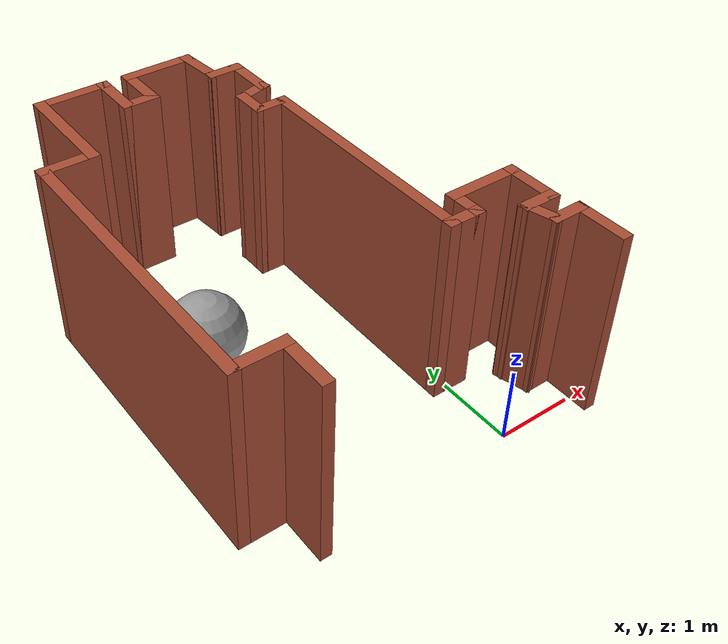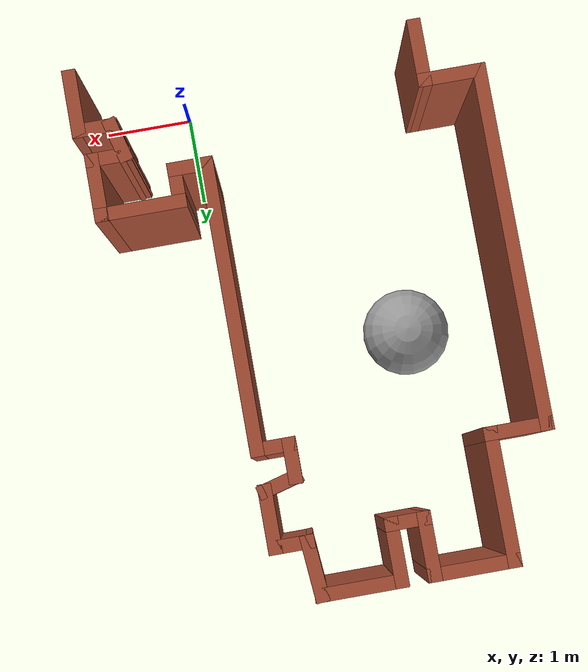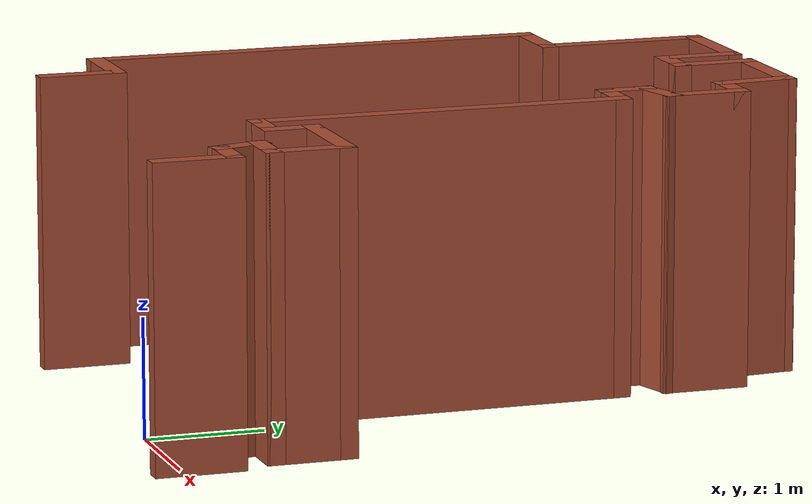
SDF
<sdf version="1.6">
 <model name="map_40">
  <link name="Wall_0">
   <pose>-1 5.72202 0 0 -0 3.14159</pose>
   <visual name="Wall_0_Visual">
    <pose>0 0 1.25 0 -0 0</pose>
    <geometry><box><size>1 0.15 2.5</size></box></geometry>
    <material>
     <script><uri>file://media/materials/scripts/gazebo.material</uri><name>Gazebo/Bricks</name></script>
     <ambient>1 1 1 1</ambient>
     <shader type="pixel"/>
    </material>
    <meta><layer>0</layer></meta>
   </visual>
   <collision name="Wall_0_Collision">
    <pose>0 0 1.25 0 -0 0</pose>
    <geometry><box><size>1 0.15 2.5</size></box></geometry>
    <surface>
     <friction>
      <ode><mu>1</mu><mu2>1</mu2><fdir1>0 0 0</fdir1><slip1>0</slip1><slip2>0</slip2></ode>
      <torsional>
       <coefficient>1</coefficient>
       <patch_radius>0</patch_radius>
       <surface_radius>0</surface_radius>
       <use_patch_radius>1</use_patch_radius>
       <ode><slip>0</slip></ode>
      </torsional>
     </friction>
     <bounce><restitution_coefficient>0</restitution_coefficient><threshold>1e+06</threshold></bounce>
     <contact>
      <collide_without_contact>0</collide_without_contact>
      <collide_without_contact_bitmask>1</collide_without_contact_bitmask>
      <collide_bitmask>1</collide_bitmask>
      <ode>
       <soft_cfm>0</soft_cfm>
       <soft_erp>0.2</soft_erp>
       <kp>1e+13</kp>
       <kd>1</kd>
       <max_vel>0.01</max_vel>
       <min_depth>0</min_depth>
      </ode>
      <bullet>
       <split_impulse>1</split_impulse>
       <split_impulse_penetration_threshold>-0.01</split_impulse_penetration_threshold>
       <soft_cfm>0</soft_cfm>
       <soft_erp>0.2</soft_erp>
       <kp>1e+13</kp>
       <kd>1</kd>
      </bullet>
     </contact>
    </surface>
   </collision>
  </link>
  <link name="Wall_10">
   <pose>-2.2 5.72202 0 0 -0 3.14159</pose>
   <visual name="Wall_10_Visual">
    <pose>0 0 1.25 0 -0 0</pose>
    <geometry><box><size>1 0.15 2.5</size></box></geometry>
    <material>
     <script><uri>file://media/materials/scripts/gazebo.material</uri><name>Gazebo/Bricks</name></script>
     <ambient>1 1 1 1</ambient>
     <shader type="pixel"/>
    </material>
    <meta><layer>0</layer></meta>
   </visual>
   <collision name="Wall_10_Collision">
    <pose>0 0 1.25 0 -0 0</pose>
    <geometry><box><size>1 0.15 2.5</size></box></geometry>
    <surface>
     <friction>
      <ode><mu>1</mu><mu2>1</mu2><fdir1>0 0 0</fdir1><slip1>0</slip1><slip2>0</slip2></ode>
      <torsional>
       <coefficient>1</coefficient>
       <patch_radius>0</patch_radius>
       <surface_radius>0</surface_radius>
       <use_patch_radius>1</use_patch_radius>
       <ode><slip>0</slip></ode>
      </torsional>
     </friction>
     <bounce><restitution_coefficient>0</restitution_coefficient><threshold>1e+06</threshold></bounce>
     <contact>
      <collide_without_contact>0</collide_without_contact>
      <collide_without_contact_bitmask>1</collide_without_contact_bitmask>
      <collide_bitmask>1</collide_bitmask>
      <ode>
       <soft_cfm>0</soft_cfm>
       <soft_erp>0.2</soft_erp>
       <kp>1e+13</kp>
       <kd>1</kd>
       <max_vel>0.01</max_vel>
       <min_depth>0</min_depth>
      </ode>
      <bullet>
       <split_impulse>1</split_impulse>
       <split_impulse_penetration_threshold>-0.01</split_impulse_penetration_threshold>
       <soft_cfm>0</soft_cfm>
       <soft_erp>0.2</soft_erp>
       <kp>1e+13</kp>
       <kd>1</kd>
      </bullet>
     </contact>
    </surface>
   </collision>
  </link>
  <link name="Wall_11">
   <pose>-2.625 5.04702 0 0 0 -1.5708</pose>
   <visual name="Wall_11_Visual">
    <pose>0 0 1.25 0 -0 0</pose>
    <geometry><box><size>1.5 0.15 2.5</size></box></geometry>
    <material>
     <script><uri>file://media/materials/scripts/gazebo.material</uri><name>Gazebo/Bricks</name></script>
     <ambient>1 1 1 1</ambient>
     <shader type="pixel"/>
    </material>
    <meta><layer>0</layer></meta>
   </visual>
   <collision name="Wall_11_Collision">
    <pose>0 0 1.25 0 -0 0</pose>
    <geometry><box><size>1.5 0.15 2.5</size></box></geometry>
    <surface>
     <friction>
      <ode><mu>1</mu><mu2>1</mu2><fdir1>0 0 0</fdir1><slip1>0</slip1><slip2>0</slip2></ode>
      <torsional>
       <coefficient>1</coefficient>
       <patch_radius>0</patch_radius>
       <surface_radius>0</surface_radius>
       <use_patch_radius>1</use_patch_radius>
       <ode><slip>0</slip></ode>
      </torsional>
     </friction>
     <bounce><restitution_coefficient>0</restitution_coefficient><threshold>1e+06</threshold></bounce>
     <contact>
      <collide_without_contact>0</collide_without_contact>
      <collide_without_contact_bitmask>1</collide_without_contact_bitmask>
      <collide_bitmask>1</collide_bitmask>
      <ode>
       <soft_cfm>0</soft_cfm>
       <soft_erp>0.2</soft_erp>
       <kp>1e+13</kp>
       <kd>1</kd>
       <max_vel>0.01</max_vel>
       <min_depth>0</min_depth>
      </ode>
      <bullet>
       <split_impulse>1</split_impulse>
       <split_impulse_penetration_threshold>-0.01</split_impulse_penetration_threshold>
       <soft_cfm>0</soft_cfm>
       <soft_erp>0.2</soft_erp>
       <kp>1e+13</kp>
       <kd>1</kd>
      </bullet>
     </contact>
    </surface>
   </collision>
  </link>
  <link name="Wall_12">
   <pose>-2.925 4.37202 0 0 -0 3.14159</pose>
   <visual name="Wall_12_Visual">
    <pose>0 0 1.25 0 -0 0</pose>
    <geometry><box><size>0.75 0.15 2.5</size></box></geometry>
    <material>
     <script><uri>file://media/materials/scripts/gazebo.material</uri><name>Gazebo/Bricks</name></script>
     <ambient>1 1 1 1</ambient>
     <shader type="pixel"/>
    </material>
    <meta><layer>0</layer></meta>
   </visual>
   <collision name="Wall_12_Collision">
    <pose>0 0 1.25 0 -0 0</pose>
    <geometry><box><size>0.75 0.15 2.5</size></box></geometry>
    <surface>
     <friction>
      <ode><mu>1</mu><mu2>1</mu2><fdir1>0 0 0</fdir1><slip1>0</slip1><slip2>0</slip2></ode>
      <torsional>
       <coefficient>1</coefficient>
       <patch_radius>0</patch_radius>
       <surface_radius>0</surface_radius>
       <use_patch_radius>1</use_patch_radius>
       <ode><slip>0</slip></ode>
      </torsional>
     </friction>
     <bounce><restitution_coefficient>0</restitution_coefficient><threshold>1e+06</threshold></bounce>
     <contact>
      <collide_without_contact>0</collide_without_contact>
      <collide_without_contact_bitmask>1</collide_without_contact_bitmask>
      <collide_bitmask>1</collide_bitmask>
      <ode>
       <soft_cfm>0</soft_cfm>
       <soft_erp>0.2</soft_erp>
       <kp>1e+13</kp>
       <kd>1</kd>
       <max_vel>0.01</max_vel>
       <min_depth>0</min_depth>
      </ode>
      <bullet>
       <split_impulse>1</split_impulse>
       <split_impulse_penetration_threshold>-0.01</split_impulse_penetration_threshold>
       <soft_cfm>0</soft_cfm>
       <soft_erp>0.2</soft_erp>
       <kp>1e+13</kp>
       <kd>1</kd>
      </bullet>
     </contact>
    </surface>
   </collision>
  </link>
  <link name="Wall_13">
   <pose>-3.225 2.44702 0 0 0 -1.5708</pose>
   <visual name="Wall_13_Visual">
    <pose>0 0 1.25 0 -0 0</pose>
    <geometry><box><size>4 0.15 2.5</size></box></geometry>
    <material>
     <script><uri>file://media/materials/scripts/gazebo.material</uri><name>Gazebo/Bricks</name></script>
     <ambient>1 1 1 1</ambient>
     <shader type="pixel"/>
    </material>
    <meta><layer>0</layer></meta>
   </visual>
   <collision name="Wall_13_Collision">
    <pose>0 0 1.25 0 -0 0</pose>
    <geometry><box><size>4 0.15 2.5</size></box></geometry>
    <surface>
     <friction>
      <ode><mu>1</mu><mu2>1</mu2><fdir1>0 0 0</fdir1><slip1>0</slip1><slip2>0</slip2></ode>
      <torsional>
       <coefficient>1</coefficient>
       <patch_radius>0</patch_radius>
       <surface_radius>0</surface_radius>
       <use_patch_radius>1</use_patch_radius>
       <ode><slip>0</slip></ode>
      </torsional>
     </friction>
     <bounce><restitution_coefficient>0</restitution_coefficient><threshold>1e+06</threshold></bounce>
     <contact>
      <collide_without_contact>0</collide_without_contact>
      <collide_without_contact_bitmask>1</collide_without_contact_bitmask>
      <collide_bitmask>1</collide_bitmask>
      <ode>
       <soft_cfm>0</soft_cfm>
       <soft_erp>0.2</soft_erp>
       <kp>1e+13</kp>
       <kd>1</kd>
       <max_vel>0.01</max_vel>
       <min_depth>0</min_depth>
      </ode>
      <bullet>
       <split_impulse>1</split_impulse>
       <split_impulse_penetration_threshold>-0.01</split_impulse_penetration_threshold>
       <soft_cfm>0</soft_cfm>
       <soft_erp>0.2</soft_erp>
       <kp>1e+13</kp>
       <kd>1</kd>
      </bullet>
     </contact>
    </surface>
   </collision>
  </link>
  <link name="Wall_16">
   <pose>-2.925 0.522023 0 0 -0 0</pose>
   <visual name="Wall_16_Visual">
    <pose>0 0 1.25 0 -0 0</pose>
    <geometry><box><size>0.75 0.15 2.5</size></box></geometry>
    <material>
     <script><uri>file://media/materials/scripts/gazebo.material</uri><name>Gazebo/Bricks</name></script>
     <ambient>1 1 1 1</ambient>
     <shader type="pixel"/>
    </material>
    <meta><layer>0</layer></meta>
   </visual>
   <collision name="Wall_16_Collision">
    <pose>0 0 1.25 0 -0 0</pose>
    <geometry><box><size>0.75 0.15 2.5</size></box></geometry>
    <surface>
     <friction>
      <ode><mu>1</mu><mu2>1</mu2><fdir1>0 0 0</fdir1><slip1>0</slip1><slip2>0</slip2></ode>
      <torsional>
       <coefficient>1</coefficient>
       <patch_radius>0</patch_radius>
       <surface_radius>0</surface_radius>
       <use_patch_radius>1</use_patch_radius>
       <ode><slip>0</slip></ode>
      </torsional>
     </friction>
     <bounce><restitution_coefficient>0</restitution_coefficient><threshold>1e+06</threshold></bounce>
     <contact>
      <collide_without_contact>0</collide_without_contact>
      <collide_without_contact_bitmask>1</collide_without_contact_bitmask>
      <collide_bitmask>1</collide_bitmask>
      <ode>
       <soft_cfm>0</soft_cfm>
       <soft_erp>0.2</soft_erp>
       <kp>1e+13</kp>
       <kd>1</kd>
       <max_vel>0.01</max_vel>
       <min_depth>0</min_depth>
      </ode>
      <bullet>
       <split_impulse>1</split_impulse>
       <split_impulse_penetration_threshold>-0.01</split_impulse_penetration_threshold>
       <soft_cfm>0</soft_cfm>
       <soft_erp>0.2</soft_erp>
       <kp>1e+13</kp>
       <kd>1</kd>
      </bullet>
     </contact>
    </surface>
   </collision>
  </link>
  <link name="Wall_17">
   <pose>-2.625 0.222023 0 0 0 -1.5708</pose>
   <visual name="Wall_17_Visual">
    <pose>0 0 1.25 0 -0 0</pose>
    <geometry><box><size>0.75 0.15 2.5</size></box></geometry>
    <material>
     <script><uri>file://media/materials/scripts/gazebo.material</uri><name>Gazebo/Bricks</name></script>
     <ambient>1 1 1 1</ambient>
     <shader type="pixel"/>
    </material>
    <meta><layer>0</layer></meta>
   </visual>
   <collision name="Wall_17_Collision">
    <pose>0 0 1.25 0 -0 0</pose>
    <geometry><box><size>0.75 0.15 2.5</size></box></geometry>
    <surface>
     <friction>
      <ode><mu>1</mu><mu2>1</mu2><fdir1>0 0 0</fdir1><slip1>0</slip1><slip2>0</slip2></ode>
      <torsional>
       <coefficient>1</coefficient>
       <patch_radius>0</patch_radius>
       <surface_radius>0</surface_radius>
       <use_patch_radius>1</use_patch_radius>
       <ode><slip>0</slip></ode>
      </torsional>
     </friction>
     <bounce><restitution_coefficient>0</restitution_coefficient><threshold>1e+06</threshold></bounce>
     <contact>
      <collide_without_contact>0</collide_without_contact>
      <collide_without_contact_bitmask>1</collide_without_contact_bitmask>
      <collide_bitmask>1</collide_bitmask>
      <ode>
       <soft_cfm>0</soft_cfm>
       <soft_erp>0.2</soft_erp>
       <kp>1e+13</kp>
       <kd>1</kd>
       <max_vel>0.01</max_vel>
       <min_depth>0</min_depth>
      </ode>
      <bullet>
       <split_impulse>1</split_impulse>
       <split_impulse_penetration_threshold>-0.01</split_impulse_penetration_threshold>
       <soft_cfm>0</soft_cfm>
       <soft_erp>0.2</soft_erp>
       <kp>1e+13</kp>
       <kd>1</kd>
      </bullet>
     </contact>
    </surface>
   </collision>
  </link>
  <link name="Wall_3">
   <pose>-1.425 5.42202 0 0 0 -1.5708</pose>
   <visual name="Wall_3_Visual">
    <pose>0 0 1.25 0 -0 0</pose>
    <geometry><box><size>0.75 0.15 2.5</size></box></geometry>
    <material>
     <script><uri>file://media/materials/scripts/gazebo.material</uri><name>Gazebo/Bricks</name></script>
     <ambient>1 1 1 1</ambient>
     <shader type="pixel"/>
    </material>
    <meta><layer>0</layer></meta>
   </visual>
   <collision name="Wall_3_Collision">
    <pose>0 0 1.25 0 -0 0</pose>
    <geometry><box><size>0.75 0.15 2.5</size></box></geometry>
    <surface>
     <friction>
      <ode><mu>1</mu><mu2>1</mu2><fdir1>0 0 0</fdir1><slip1>0</slip1><slip2>0</slip2></ode>
      <torsional>
       <coefficient>1</coefficient>
       <patch_radius>0</patch_radius>
       <surface_radius>0</surface_radius>
       <use_patch_radius>1</use_patch_radius>
       <ode><slip>0</slip></ode>
      </torsional>
     </friction>
     <bounce><restitution_coefficient>0</restitution_coefficient><threshold>1e+06</threshold></bounce>
     <contact>
      <collide_without_contact>0</collide_without_contact>
      <collide_without_contact_bitmask>1</collide_without_contact_bitmask>
      <collide_bitmask>1</collide_bitmask>
      <ode>
       <soft_cfm>0</soft_cfm>
       <soft_erp>0.2</soft_erp>
       <kp>1e+13</kp>
       <kd>1</kd>
       <max_vel>0.01</max_vel>
       <min_depth>0</min_depth>
      </ode>
      <bullet>
       <split_impulse>1</split_impulse>
       <split_impulse_penetration_threshold>-0.01</split_impulse_penetration_threshold>
       <soft_cfm>0</soft_cfm>
       <soft_erp>0.2</soft_erp>
       <kp>1e+13</kp>
       <kd>1</kd>
      </bullet>
     </contact>
    </surface>
   </collision>
  </link>
  <link name="Wall_4">
   <pose>-1.6 5.12202 0 0 -0 3.14159</pose>
   <visual name="Wall_4_Visual">
    <pose>0 0 1.25 0 -0 0</pose>
    <geometry><box><size>0.5 0.15 2.5</size></box></geometry>
    <material>
     <script><uri>file://media/materials/scripts/gazebo.material</uri><name>Gazebo/Bricks</name></script>
     <ambient>1 1 1 1</ambient>
     <shader type="pixel"/>
    </material>
    <meta><layer>0</layer></meta>
   </visual>
   <collision name="Wall_4_Collision">
    <pose>0 0 1.25 0 -0 0</pose>
    <geometry><box><size>0.5 0.15 2.5</size></box></geometry>
    <surface>
     <friction>
      <ode><mu>1</mu><mu2>1</mu2><fdir1>0 0 0</fdir1><slip1>0</slip1><slip2>0</slip2></ode>
      <torsional>
       <coefficient>1</coefficient>
       <patch_radius>0</patch_radius>
       <surface_radius>0</surface_radius>
       <use_patch_radius>1</use_patch_radius>
       <ode><slip>0</slip></ode>
      </torsional>
     </friction>
     <bounce><restitution_coefficient>0</restitution_coefficient><threshold>1e+06</threshold></bounce>
     <contact>
      <collide_without_contact>0</collide_without_contact>
      <collide_without_contact_bitmask>1</collide_without_contact_bitmask>
      <collide_bitmask>1</collide_bitmask>
      <ode>
       <soft_cfm>0</soft_cfm>
       <soft_erp>0.2</soft_erp>
       <kp>1e+13</kp>
       <kd>1</kd>
       <max_vel>0.01</max_vel>
       <min_depth>0</min_depth>
      </ode>
      <bullet>
       <split_impulse>1</split_impulse>
       <split_impulse_penetration_threshold>-0.01</split_impulse_penetration_threshold>
       <soft_cfm>0</soft_cfm>
       <soft_erp>0.2</soft_erp>
       <kp>1e+13</kp>
       <kd>1</kd>
      </bullet>
     </contact>
    </surface>
   </collision>
  </link>
  <link name="Wall_50">
   <pose>1.125 0.122023 0 0 -0 1.5708</pose>
   <visual name="Wall_50_Visual">
    <pose>0 0 1.25 0 -0 0</pose>
    <geometry><box><size>0.75 0.15 2.5</size></box></geometry>
    <material>
     <script><uri>file://media/materials/scripts/gazebo.material</uri><name>Gazebo/Bricks</name></script>
     <ambient>1 1 1 1</ambient>
     <shader type="pixel"/>
    </material>
    <meta><layer>0</layer></meta>
   </visual>
   <collision name="Wall_50_Collision">
    <pose>0 0 1.25 0 -0 0</pose>
    <geometry><box><size>0.75 0.15 2.5</size></box></geometry>
    <surface>
     <friction>
      <ode><mu>1</mu><mu2>1</mu2><fdir1>0 0 0</fdir1><slip1>0</slip1><slip2>0</slip2></ode>
      <torsional>
       <coefficient>1</coefficient>
       <patch_radius>0</patch_radius>
       <surface_radius>0</surface_radius>
       <use_patch_radius>1</use_patch_radius>
       <ode><slip>0</slip></ode>
      </torsional>
     </friction>
     <bounce><restitution_coefficient>0</restitution_coefficient><threshold>1e+06</threshold></bounce>
     <contact>
      <collide_without_contact>0</collide_without_contact>
      <collide_without_contact_bitmask>1</collide_without_contact_bitmask>
      <collide_bitmask>1</collide_bitmask>
      <ode>
       <soft_cfm>0</soft_cfm>
       <soft_erp>0.2</soft_erp>
       <kp>1e+13</kp>
       <kd>1</kd>
       <max_vel>0.01</max_vel>
       <min_depth>0</min_depth>
      </ode>
      <bullet>
       <split_impulse>1</split_impulse>
       <split_impulse_penetration_threshold>-0.01</split_impulse_penetration_threshold>
       <soft_cfm>0</soft_cfm>
       <soft_erp>0.2</soft_erp>
       <kp>1e+13</kp>
       <kd>1</kd>
      </bullet>
     </contact>
    </surface>
   </collision>
  </link>
  <link name="Wall_51">
   <pose>0.95 0.422023 0 0 -0 3.14159</pose>
   <visual name="Wall_51_Visual">
    <pose>0 0 1.25 0 -0 0</pose>
    <geometry><box><size>0.5 0.15 2.5</size></box></geometry>
    <material>
     <script><uri>file://media/materials/scripts/gazebo.material</uri><name>Gazebo/Bricks</name></script>
     <ambient>1 1 1 1</ambient>
     <shader type="pixel"/>
    </material>
    <meta><layer>0</layer></meta>
   </visual>
   <collision name="Wall_51_Collision">
    <pose>0 0 1.25 0 -0 0</pose>
    <geometry><box><size>0.5 0.15 2.5</size></box></geometry>
    <surface>
     <friction>
      <ode><mu>1</mu><mu2>1</mu2><fdir1>0 0 0</fdir1><slip1>0</slip1><slip2>0</slip2></ode>
      <torsional>
       <coefficient>1</coefficient>
       <patch_radius>0</patch_radius>
       <surface_radius>0</surface_radius>
       <use_patch_radius>1</use_patch_radius>
       <ode><slip>0</slip></ode>
      </torsional>
     </friction>
     <bounce><restitution_coefficient>0</restitution_coefficient><threshold>1e+06</threshold></bounce>
     <contact>
      <collide_without_contact>0</collide_without_contact>
      <collide_without_contact_bitmask>1</collide_without_contact_bitmask>
      <collide_bitmask>1</collide_bitmask>
      <ode>
       <soft_cfm>0</soft_cfm>
       <soft_erp>0.2</soft_erp>
       <kp>1e+13</kp>
       <kd>1</kd>
       <max_vel>0.01</max_vel>
       <min_depth>0</min_depth>
      </ode>
      <bullet>
       <split_impulse>1</split_impulse>
       <split_impulse_penetration_threshold>-0.01</split_impulse_penetration_threshold>
       <soft_cfm>0</soft_cfm>
       <soft_erp>0.2</soft_erp>
       <kp>1e+13</kp>
       <kd>1</kd>
      </bullet>
     </contact>
    </surface>
   </collision>
  </link>
  <link name="Wall_52">
   <pose>0.729707 0.59106 0 0 -0 1.8326</pose>
   <visual name="Wall_52_Visual">
    <pose>0 0 1.25 0 -0 0</pose>
    <geometry><box><size>0.5 0.15 2.5</size></box></geometry>
    <material>
     <script><uri>file://media/materials/scripts/gazebo.material</uri><name>Gazebo/Bricks</name></script>
     <ambient>1 1 1 1</ambient>
     <shader type="pixel"/>
    </material>
    <meta><layer>0</layer></meta>
   </visual>
   <collision name="Wall_52_Collision">
    <pose>0 0 1.25 0 -0 0</pose>
    <geometry><box><size>0.5 0.15 2.5</size></box></geometry>
    <surface>
     <friction>
      <ode><mu>1</mu><mu2>1</mu2><fdir1>0 0 0</fdir1><slip1>0</slip1><slip2>0</slip2></ode>
      <torsional>
       <coefficient>1</coefficient>
       <patch_radius>0</patch_radius>
       <surface_radius>0</surface_radius>
       <use_patch_radius>1</use_patch_radius>
       <ode><slip>0</slip></ode>
      </torsional>
     </friction>
     <bounce><restitution_coefficient>0</restitution_coefficient><threshold>1e+06</threshold></bounce>
     <contact>
      <collide_without_contact>0</collide_without_contact>
      <collide_without_contact_bitmask>1</collide_without_contact_bitmask>
      <collide_bitmask>1</collide_bitmask>
      <ode>
       <soft_cfm>0</soft_cfm>
       <soft_erp>0.2</soft_erp>
       <kp>1e+13</kp>
       <kd>1</kd>
       <max_vel>0.01</max_vel>
       <min_depth>0</min_depth>
      </ode>
      <bullet>
       <split_impulse>1</split_impulse>
       <split_impulse_penetration_threshold>-0.01</split_impulse_penetration_threshold>
       <soft_cfm>0</soft_cfm>
       <soft_erp>0.2</soft_erp>
       <kp>1e+13</kp>
       <kd>1</kd>
      </bullet>
     </contact>
    </surface>
   </collision>
  </link>
  <link name="Wall_53">
   <pose>0.859413 0.760097 0 0 -0 0</pose>
   <visual name="Wall_53_Visual">
    <pose>0 0 1.25 0 -0 0</pose>
    <geometry><box><size>0.5 0.15 2.5</size></box></geometry>
    <material>
     <script><uri>file://media/materials/scripts/gazebo.material</uri><name>Gazebo/Bricks</name></script>
     <ambient>1 1 1 1</ambient>
     <shader type="pixel"/>
    </material>
    <meta><layer>0</layer></meta>
   </visual>
   <collision name="Wall_53_Collision">
    <pose>0 0 1.25 0 -0 0</pose>
    <geometry><box><size>0.5 0.15 2.5</size></box></geometry>
    <surface>
     <friction>
      <ode><mu>1</mu><mu2>1</mu2><fdir1>0 0 0</fdir1><slip1>0</slip1><slip2>0</slip2></ode>
      <torsional>
       <coefficient>1</coefficient>
       <patch_radius>0</patch_radius>
       <surface_radius>0</surface_radius>
       <use_patch_radius>1</use_patch_radius>
       <ode><slip>0</slip></ode>
      </torsional>
     </friction>
     <bounce><restitution_coefficient>0</restitution_coefficient><threshold>1e+06</threshold></bounce>
     <contact>
      <collide_without_contact>0</collide_without_contact>
      <collide_without_contact_bitmask>1</collide_without_contact_bitmask>
      <collide_bitmask>1</collide_bitmask>
      <ode>
       <soft_cfm>0</soft_cfm>
       <soft_erp>0.2</soft_erp>
       <kp>1e+13</kp>
       <kd>1</kd>
       <max_vel>0.01</max_vel>
       <min_depth>0</min_depth>
      </ode>
      <bullet>
       <split_impulse>1</split_impulse>
       <split_impulse_penetration_threshold>-0.01</split_impulse_penetration_threshold>
       <soft_cfm>0</soft_cfm>
       <soft_erp>0.2</soft_erp>
       <kp>1e+13</kp>
       <kd>1</kd>
      </bullet>
     </contact>
    </surface>
   </collision>
  </link>
  <link name="Wall_56">
   <pose>1.03441 1.0601 0 0 -0 1.5708</pose>
   <visual name="Wall_56_Visual">
    <pose>0 0 1.25 0 -0 0</pose>
    <geometry><box><size>0.75 0.15 2.5</size></box></geometry>
    <material>
     <script><uri>file://media/materials/scripts/gazebo.material</uri><name>Gazebo/Bricks</name></script>
     <ambient>1 1 1 1</ambient>
     <shader type="pixel"/>
    </material>
    <meta><layer>0</layer></meta>
   </visual>
   <collision name="Wall_56_Collision">
    <pose>0 0 1.25 0 -0 0</pose>
    <geometry><box><size>0.75 0.15 2.5</size></box></geometry>
    <surface>
     <friction>
      <ode><mu>1</mu><mu2>1</mu2><fdir1>0 0 0</fdir1><slip1>0</slip1><slip2>0</slip2></ode>
      <torsional>
       <coefficient>1</coefficient>
       <patch_radius>0</patch_radius>
       <surface_radius>0</surface_radius>
       <use_patch_radius>1</use_patch_radius>
       <ode><slip>0</slip></ode>
      </torsional>
     </friction>
     <bounce><restitution_coefficient>0</restitution_coefficient><threshold>1e+06</threshold></bounce>
     <contact>
      <collide_without_contact>0</collide_without_contact>
      <collide_without_contact_bitmask>1</collide_without_contact_bitmask>
      <collide_bitmask>1</collide_bitmask>
      <ode>
       <soft_cfm>0</soft_cfm>
       <soft_erp>0.2</soft_erp>
       <kp>1e+13</kp>
       <kd>1</kd>
       <max_vel>0.01</max_vel>
       <min_depth>0</min_depth>
      </ode>
      <bullet>
       <split_impulse>1</split_impulse>
       <split_impulse_penetration_threshold>-0.01</split_impulse_penetration_threshold>
       <soft_cfm>0</soft_cfm>
       <soft_erp>0.2</soft_erp>
       <kp>1e+13</kp>
       <kd>1</kd>
      </bullet>
     </contact>
    </surface>
   </collision>
  </link>
  <link name="Wall_57">
   <pose>0.609413 1.3601 0 0 -0 3.14159</pose>
   <visual name="Wall_57_Visual">
    <pose>0 0 1.25 0 -0 0</pose>
    <geometry><box><size>1 0.15 2.5</size></box></geometry>
    <material>
     <script><uri>file://media/materials/scripts/gazebo.material</uri><name>Gazebo/Bricks</name></script>
     <ambient>1 1 1 1</ambient>
     <shader type="pixel"/>
    </material>
    <meta><layer>0</layer></meta>
   </visual>
   <collision name="Wall_57_Collision">
    <pose>0 0 1.25 0 -0 0</pose>
    <geometry><box><size>1 0.15 2.5</size></box></geometry>
    <surface>
     <friction>
      <ode><mu>1</mu><mu2>1</mu2><fdir1>0 0 0</fdir1><slip1>0</slip1><slip2>0</slip2></ode>
      <torsional>
       <coefficient>1</coefficient>
       <patch_radius>0</patch_radius>
       <surface_radius>0</surface_radius>
       <use_patch_radius>1</use_patch_radius>
       <ode><slip>0</slip></ode>
      </torsional>
     </friction>
     <bounce><restitution_coefficient>0</restitution_coefficient><threshold>1e+06</threshold></bounce>
     <contact>
      <collide_without_contact>0</collide_without_contact>
      <collide_without_contact_bitmask>1</collide_without_contact_bitmask>
      <collide_bitmask>1</collide_bitmask>
      <ode>
       <soft_cfm>0</soft_cfm>
       <soft_erp>0.2</soft_erp>
       <kp>1e+13</kp>
       <kd>1</kd>
       <max_vel>0.01</max_vel>
       <min_depth>0</min_depth>
      </ode>
      <bullet>
       <split_impulse>1</split_impulse>
       <split_impulse_penetration_threshold>-0.01</split_impulse_penetration_threshold>
       <soft_cfm>0</soft_cfm>
       <soft_erp>0.2</soft_erp>
       <kp>1e+13</kp>
       <kd>1</kd>
      </bullet>
     </contact>
    </surface>
   </collision>
  </link>
  <link name="Wall_58">
   <pose>0.184413 1.1851 0 0 0 -1.5708</pose>
   <visual name="Wall_58_Visual">
    <pose>0 0 1.25 0 -0 0</pose>
    <geometry><box><size>0.5 0.15 2.5</size></box></geometry>
    <material>
     <script><uri>file://media/materials/scripts/gazebo.material</uri><name>Gazebo/Bricks</name></script>
     <ambient>1 1 1 1</ambient>
     <shader type="pixel"/>
    </material>
    <meta><layer>0</layer></meta>
   </visual>
   <collision name="Wall_58_Collision">
    <pose>0 0 1.25 0 -0 0</pose>
    <geometry><box><size>0.5 0.15 2.5</size></box></geometry>
    <surface>
     <friction>
      <ode><mu>1</mu><mu2>1</mu2><fdir1>0 0 0</fdir1><slip1>0</slip1><slip2>0</slip2></ode>
      <torsional>
       <coefficient>1</coefficient>
       <patch_radius>0</patch_radius>
       <surface_radius>0</surface_radius>
       <use_patch_radius>1</use_patch_radius>
       <ode><slip>0</slip></ode>
      </torsional>
     </friction>
     <bounce><restitution_coefficient>0</restitution_coefficient><threshold>1e+06</threshold></bounce>
     <contact>
      <collide_without_contact>0</collide_without_contact>
      <collide_without_contact_bitmask>1</collide_without_contact_bitmask>
      <collide_bitmask>1</collide_bitmask>
      <ode>
       <soft_cfm>0</soft_cfm>
       <soft_erp>0.2</soft_erp>
       <kp>1e+13</kp>
       <kd>1</kd>
       <max_vel>0.01</max_vel>
       <min_depth>0</min_depth>
      </ode>
      <bullet>
       <split_impulse>1</split_impulse>
       <split_impulse_penetration_threshold>-0.01</split_impulse_penetration_threshold>
       <soft_cfm>0</soft_cfm>
       <soft_erp>0.2</soft_erp>
       <kp>1e+13</kp>
       <kd>1</kd>
      </bullet>
     </contact>
    </surface>
   </collision>
  </link>
  <link name="Wall_59">
   <pose>0.009413 1.0101 0 0 -0 3.14159</pose>
   <visual name="Wall_59_Visual">
    <pose>0 0 1.25 0 -0 0</pose>
    <geometry><box><size>0.5 0.15 2.5</size></box></geometry>
    <material>
     <script><uri>file://media/materials/scripts/gazebo.material</uri><name>Gazebo/Bricks</name></script>
     <ambient>1 1 1 1</ambient>
     <shader type="pixel"/>
    </material>
    <meta><layer>0</layer></meta>
   </visual>
   <collision name="Wall_59_Collision">
    <pose>0 0 1.25 0 -0 0</pose>
    <geometry><box><size>0.5 0.15 2.5</size></box></geometry>
    <surface>
     <friction>
      <ode><mu>1</mu><mu2>1</mu2><fdir1>0 0 0</fdir1><slip1>0</slip1><slip2>0</slip2></ode>
      <torsional>
       <coefficient>1</coefficient>
       <patch_radius>0</patch_radius>
       <surface_radius>0</surface_radius>
       <use_patch_radius>1</use_patch_radius>
       <ode><slip>0</slip></ode>
      </torsional>
     </friction>
     <bounce><restitution_coefficient>0</restitution_coefficient><threshold>1e+06</threshold></bounce>
     <contact>
      <collide_without_contact>0</collide_without_contact>
      <collide_without_contact_bitmask>1</collide_without_contact_bitmask>
      <collide_bitmask>1</collide_bitmask>
      <ode>
       <soft_cfm>0</soft_cfm>
       <soft_erp>0.2</soft_erp>
       <kp>1e+13</kp>
       <kd>1</kd>
       <max_vel>0.01</max_vel>
       <min_depth>0</min_depth>
      </ode>
      <bullet>
       <split_impulse>1</split_impulse>
       <split_impulse_penetration_threshold>-0.01</split_impulse_penetration_threshold>
       <soft_cfm>0</soft_cfm>
       <soft_erp>0.2</soft_erp>
       <kp>1e+13</kp>
       <kd>1</kd>
      </bullet>
     </contact>
    </surface>
   </collision>
  </link>
  <link name="Wall_60">
   <pose>-0.165587 2.5601 0 0 -0 1.5708</pose>
   <visual name="Wall_60_Visual">
    <pose>0 0 1.25 0 -0 0</pose>
    <geometry><box><size>3.25 0.15 2.5</size></box></geometry>
    <material>
     <script><uri>file://media/materials/scripts/gazebo.material</uri><name>Gazebo/Bricks</name></script>
     <ambient>1 1 1 1</ambient>
     <shader type="pixel"/>
    </material>
    <meta><layer>0</layer></meta>
   </visual>
   <collision name="Wall_60_Collision">
    <pose>0 0 1.25 0 -0 0</pose>
    <geometry><box><size>3.25 0.15 2.5</size></box></geometry>
    <surface>
     <friction>
      <ode><mu>1</mu><mu2>1</mu2><fdir1>0 0 0</fdir1><slip1>0</slip1><slip2>0</slip2></ode>
      <torsional>
       <coefficient>1</coefficient>
       <patch_radius>0</patch_radius>
       <surface_radius>0</surface_radius>
       <use_patch_radius>1</use_patch_radius>
       <ode><slip>0</slip></ode>
      </torsional>
     </friction>
     <bounce><restitution_coefficient>0</restitution_coefficient><threshold>1e+06</threshold></bounce>
     <contact>
      <collide_without_contact>0</collide_without_contact>
      <collide_without_contact_bitmask>1</collide_without_contact_bitmask>
      <collide_bitmask>1</collide_bitmask>
      <ode>
       <soft_cfm>0</soft_cfm>
       <soft_erp>0.2</soft_erp>
       <kp>1e+13</kp>
       <kd>1</kd>
       <max_vel>0.01</max_vel>
       <min_depth>0</min_depth>
      </ode>
      <bullet>
       <split_impulse>1</split_impulse>
       <split_impulse_penetration_threshold>-0.01</split_impulse_penetration_threshold>
       <soft_cfm>0</soft_cfm>
       <soft_erp>0.2</soft_erp>
       <kp>1e+13</kp>
       <kd>1</kd>
      </bullet>
     </contact>
    </surface>
   </collision>
  </link>
  <link name="Wall_61">
   <pose>-0.340587 4.1101 0 0 -0 3.14159</pose>
   <visual name="Wall_61_Visual">
    <pose>0 0 1.25 0 -0 0</pose>
    <geometry><box><size>0.5 0.15 2.5</size></box></geometry>
    <material>
     <script><uri>file://media/materials/scripts/gazebo.material</uri><name>Gazebo/Bricks</name></script>
     <ambient>1 1 1 1</ambient>
     <shader type="pixel"/>
    </material>
    <meta><layer>0</layer></meta>
   </visual>
   <collision name="Wall_61_Collision">
    <pose>0 0 1.25 0 -0 0</pose>
    <geometry><box><size>0.5 0.15 2.5</size></box></geometry>
    <surface>
     <friction>
      <ode><mu>1</mu><mu2>1</mu2><fdir1>0 0 0</fdir1><slip1>0</slip1><slip2>0</slip2></ode>
      <torsional>
       <coefficient>1</coefficient>
       <patch_radius>0</patch_radius>
       <surface_radius>0</surface_radius>
       <use_patch_radius>1</use_patch_radius>
       <ode><slip>0</slip></ode>
      </torsional>
     </friction>
     <bounce><restitution_coefficient>0</restitution_coefficient><threshold>1e+06</threshold></bounce>
     <contact>
      <collide_without_contact>0</collide_without_contact>
      <collide_without_contact_bitmask>1</collide_without_contact_bitmask>
      <collide_bitmask>1</collide_bitmask>
      <ode>
       <soft_cfm>0</soft_cfm>
       <soft_erp>0.2</soft_erp>
       <kp>1e+13</kp>
       <kd>1</kd>
       <max_vel>0.01</max_vel>
       <min_depth>0</min_depth>
      </ode>
      <bullet>
       <split_impulse>1</split_impulse>
       <split_impulse_penetration_threshold>-0.01</split_impulse_penetration_threshold>
       <soft_cfm>0</soft_cfm>
       <soft_erp>0.2</soft_erp>
       <kp>1e+13</kp>
       <kd>1</kd>
      </bullet>
     </contact>
    </surface>
   </collision>
  </link>
  <link name="Wall_62">
   <pose>-0.515587 4.2851 0 0 -0 1.5708</pose>
   <visual name="Wall_62_Visual">
    <pose>0 0 1.25 0 -0 0</pose>
    <geometry><box><size>0.5 0.15 2.5</size></box></geometry>
    <material>
     <script><uri>file://media/materials/scripts/gazebo.material</uri><name>Gazebo/Bricks</name></script>
     <ambient>1 1 1 1</ambient>
     <shader type="pixel"/>
    </material>
    <meta><layer>0</layer></meta>
   </visual>
   <collision name="Wall_62_Collision">
    <pose>0 0 1.25 0 -0 0</pose>
    <geometry><box><size>0.5 0.15 2.5</size></box></geometry>
    <surface>
     <friction>
      <ode><mu>1</mu><mu2>1</mu2><fdir1>0 0 0</fdir1><slip1>0</slip1><slip2>0</slip2></ode>
      <torsional>
       <coefficient>1</coefficient>
       <patch_radius>0</patch_radius>
       <surface_radius>0</surface_radius>
       <use_patch_radius>1</use_patch_radius>
       <ode><slip>0</slip></ode>
      </torsional>
     </friction>
     <bounce><restitution_coefficient>0</restitution_coefficient><threshold>1e+06</threshold></bounce>
     <contact>
      <collide_without_contact>0</collide_without_contact>
      <collide_without_contact_bitmask>1</collide_without_contact_bitmask>
      <collide_bitmask>1</collide_bitmask>
      <ode>
       <soft_cfm>0</soft_cfm>
       <soft_erp>0.2</soft_erp>
       <kp>1e+13</kp>
       <kd>1</kd>
       <max_vel>0.01</max_vel>
       <min_depth>0</min_depth>
      </ode>
      <bullet>
       <split_impulse>1</split_impulse>
       <split_impulse_penetration_threshold>-0.01</split_impulse_penetration_threshold>
       <soft_cfm>0</soft_cfm>
       <soft_erp>0.2</soft_erp>
       <kp>1e+13</kp>
       <kd>1</kd>
      </bullet>
     </contact>
    </surface>
   </collision>
  </link>
  <link name="Wall_63">
   <pose>-0.34655 4.50539 0 0 -0 0.261799</pose>
   <visual name="Wall_63_Visual">
    <pose>0 0 1.25 0 -0 0</pose>
    <geometry><box><size>0.5 0.15 2.5</size></box></geometry>
    <material>
     <script><uri>file://media/materials/scripts/gazebo.material</uri><name>Gazebo/Bricks</name></script>
     <ambient>1 1 1 1</ambient>
     <shader type="pixel"/>
    </material>
    <meta><layer>0</layer></meta>
   </visual>
   <collision name="Wall_63_Collision">
    <pose>0 0 1.25 0 -0 0</pose>
    <geometry><box><size>0.5 0.15 2.5</size></box></geometry>
    <surface>
     <friction>
      <ode><mu>1</mu><mu2>1</mu2><fdir1>0 0 0</fdir1><slip1>0</slip1><slip2>0</slip2></ode>
      <torsional>
       <coefficient>1</coefficient>
       <patch_radius>0</patch_radius>
       <surface_radius>0</surface_radius>
       <use_patch_radius>1</use_patch_radius>
       <ode><slip>0</slip></ode>
      </torsional>
     </friction>
     <bounce><restitution_coefficient>0</restitution_coefficient><threshold>1e+06</threshold></bounce>
     <contact>
      <collide_without_contact>0</collide_without_contact>
      <collide_without_contact_bitmask>1</collide_without_contact_bitmask>
      <collide_bitmask>1</collide_bitmask>
      <ode>
       <soft_cfm>0</soft_cfm>
       <soft_erp>0.2</soft_erp>
       <kp>1e+13</kp>
       <kd>1</kd>
       <max_vel>0.01</max_vel>
       <min_depth>0</min_depth>
      </ode>
      <bullet>
       <split_impulse>1</split_impulse>
       <split_impulse_penetration_threshold>-0.01</split_impulse_penetration_threshold>
       <soft_cfm>0</soft_cfm>
       <soft_erp>0.2</soft_erp>
       <kp>1e+13</kp>
       <kd>1</kd>
      </bullet>
     </contact>
    </surface>
   </collision>
  </link>
  <link name="Wall_64">
   <pose>-0.177513 4.85068 0 0 -0 1.5708</pose>
   <visual name="Wall_64_Visual">
    <pose>0 0 1.25 0 -0 0</pose>
    <geometry><box><size>0.75 0.15 2.5</size></box></geometry>
    <material>
     <script><uri>file://media/materials/scripts/gazebo.material</uri><name>Gazebo/Bricks</name></script>
     <ambient>1 1 1 1</ambient>
     <shader type="pixel"/>
    </material>
    <meta><layer>0</layer></meta>
   </visual>
   <collision name="Wall_64_Collision">
    <pose>0 0 1.25 0 -0 0</pose>
    <geometry><box><size>0.75 0.15 2.5</size></box></geometry>
    <surface>
     <friction>
      <ode><mu>1</mu><mu2>1</mu2><fdir1>0 0 0</fdir1><slip1>0</slip1><slip2>0</slip2></ode>
      <torsional>
       <coefficient>1</coefficient>
       <patch_radius>0</patch_radius>
       <surface_radius>0</surface_radius>
       <use_patch_radius>1</use_patch_radius>
       <ode><slip>0</slip></ode>
      </torsional>
     </friction>
     <bounce><restitution_coefficient>0</restitution_coefficient><threshold>1e+06</threshold></bounce>
     <contact>
      <collide_without_contact>0</collide_without_contact>
      <collide_without_contact_bitmask>1</collide_without_contact_bitmask>
      <collide_bitmask>1</collide_bitmask>
      <ode>
       <soft_cfm>0</soft_cfm>
       <soft_erp>0.2</soft_erp>
       <kp>1e+13</kp>
       <kd>1</kd>
       <max_vel>0.01</max_vel>
       <min_depth>0</min_depth>
      </ode>
      <bullet>
       <split_impulse>1</split_impulse>
       <split_impulse_penetration_threshold>-0.01</split_impulse_penetration_threshold>
       <soft_cfm>0</soft_cfm>
       <soft_erp>0.2</soft_erp>
       <kp>1e+13</kp>
       <kd>1</kd>
      </bullet>
     </contact>
    </surface>
   </collision>
  </link>
  <link name="Wall_65">
   <pose>-0.352513 5.15068 0 0 -0 3.14159</pose>
   <visual name="Wall_65_Visual">
    <pose>0 0 1.25 0 -0 0</pose>
    <geometry><box><size>0.5 0.15 2.5</size></box></geometry>
    <material>
     <script><uri>file://media/materials/scripts/gazebo.material</uri><name>Gazebo/Bricks</name></script>
     <ambient>1 1 1 1</ambient>
     <shader type="pixel"/>
    </material>
    <meta><layer>0</layer></meta>
   </visual>
   <collision name="Wall_65_Collision">
    <pose>0 0 1.25 0 -0 0</pose>
    <geometry><box><size>0.5 0.15 2.5</size></box></geometry>
    <surface>
     <friction>
      <ode><mu>1</mu><mu2>1</mu2><fdir1>0 0 0</fdir1><slip1>0</slip1><slip2>0</slip2></ode>
      <torsional>
       <coefficient>1</coefficient>
       <patch_radius>0</patch_radius>
       <surface_radius>0</surface_radius>
       <use_patch_radius>1</use_patch_radius>
       <ode><slip>0</slip></ode>
      </torsional>
     </friction>
     <bounce><restitution_coefficient>0</restitution_coefficient><threshold>1e+06</threshold></bounce>
     <contact>
      <collide_without_contact>0</collide_without_contact>
      <collide_without_contact_bitmask>1</collide_without_contact_bitmask>
      <collide_bitmask>1</collide_bitmask>
      <ode>
       <soft_cfm>0</soft_cfm>
       <soft_erp>0.2</soft_erp>
       <kp>1e+13</kp>
       <kd>1</kd>
       <max_vel>0.01</max_vel>
       <min_depth>0</min_depth>
      </ode>
      <bullet>
       <split_impulse>1</split_impulse>
       <split_impulse_penetration_threshold>-0.01</split_impulse_penetration_threshold>
       <soft_cfm>0</soft_cfm>
       <soft_erp>0.2</soft_erp>
       <kp>1e+13</kp>
       <kd>1</kd>
      </bullet>
     </contact>
    </surface>
   </collision>
  </link>
  <link name="Wall_66">
   <pose>-0.551256 5.43635 0 0 -0 1.65372</pose>
   <visual name="Wall_66_Visual">
    <pose>0 0 1.25 0 -0 0</pose>
    <geometry><box><size>0.723309 0.15 2.5</size></box></geometry>
    <material>
     <script><uri>file://media/materials/scripts/gazebo.material</uri><name>Gazebo/Bricks</name></script>
     <ambient>1 1 1 1</ambient>
     <shader type="pixel"/>
    </material>
    <meta><layer>0</layer></meta>
   </visual>
   <collision name="Wall_66_Collision">
    <pose>0 0 1.25 0 -0 0</pose>
    <geometry><box><size>0.723309 0.15 2.5</size></box></geometry>
    <surface>
     <friction>
      <ode><mu>1</mu><mu2>1</mu2><fdir1>0 0 0</fdir1><slip1>0</slip1><slip2>0</slip2></ode>
      <torsional>
       <coefficient>1</coefficient>
       <patch_radius>0</patch_radius>
       <surface_radius>0</surface_radius>
       <use_patch_radius>1</use_patch_radius>
       <ode><slip>0</slip></ode>
      </torsional>
     </friction>
     <bounce><restitution_coefficient>0</restitution_coefficient><threshold>1e+06</threshold></bounce>
     <contact>
      <collide_without_contact>0</collide_without_contact>
      <collide_without_contact_bitmask>1</collide_without_contact_bitmask>
      <collide_bitmask>1</collide_bitmask>
      <ode>
       <soft_cfm>0</soft_cfm>
       <soft_erp>0.2</soft_erp>
       <kp>1e+13</kp>
       <kd>1</kd>
       <max_vel>0.01</max_vel>
       <min_depth>0</min_depth>
      </ode>
      <bullet>
       <split_impulse>1</split_impulse>
       <split_impulse_penetration_threshold>-0.01</split_impulse_penetration_threshold>
       <soft_cfm>0</soft_cfm>
       <soft_erp>0.2</soft_erp>
       <kp>1e+13</kp>
       <kd>1</kd>
      </bullet>
     </contact>
    </surface>
   </collision>
  </link>
  <link name="Wall_7">
   <pose>-1.775 5.42202 0 0 -0 1.5708</pose>
   <visual name="Wall_7_Visual">
    <pose>0 0 1.25 0 -0 0</pose>
    <geometry><box><size>0.75 0.15 2.5</size></box></geometry>
    <material>
     <script><uri>file://media/materials/scripts/gazebo.material</uri><name>Gazebo/Bricks</name></script>
     <ambient>1 1 1 1</ambient>
     <shader type="pixel"/>
    </material>
    <meta><layer>0</layer></meta>
   </visual>
   <collision name="Wall_7_Collision">
    <pose>0 0 1.25 0 -0 0</pose>
    <geometry><box><size>0.75 0.15 2.5</size></box></geometry>
    <surface>
     <friction>
      <ode><mu>1</mu><mu2>1</mu2><fdir1>0 0 0</fdir1><slip1>0</slip1><slip2>0</slip2></ode>
      <torsional>
       <coefficient>1</coefficient>
       <patch_radius>0</patch_radius>
       <surface_radius>0</surface_radius>
       <use_patch_radius>1</use_patch_radius>
       <ode><slip>0</slip></ode>
      </torsional>
     </friction>
     <bounce><restitution_coefficient>0</restitution_coefficient><threshold>1e+06</threshold></bounce>
     <contact>
      <collide_without_contact>0</collide_without_contact>
      <collide_without_contact_bitmask>1</collide_without_contact_bitmask>
      <collide_bitmask>1</collide_bitmask>
      <ode>
       <soft_cfm>0</soft_cfm>
       <soft_erp>0.2</soft_erp>
       <kp>1e+13</kp>
       <kd>1</kd>
       <max_vel>0.01</max_vel>
       <min_depth>0</min_depth>
      </ode>
      <bullet>
       <split_impulse>1</split_impulse>
       <split_impulse_penetration_threshold>-0.01</split_impulse_penetration_threshold>
       <soft_cfm>0</soft_cfm>
       <soft_erp>0.2</soft_erp>
       <kp>1e+13</kp>
       <kd>1</kd>
      </bullet>
     </contact>
    </surface>
   </collision>
  </link>
  <link name="link_0">
   <inertial>
    <mass>1</mass>
    <inertia><ixx>0.1</ixx><ixy>0</ixy><ixz>0</ixz><iyy>0.1</iyy><iyz>0</iyz><izz>0.1</izz></inertia>
   </inertial>
   <pose>-2.07764 3.01349 0.5 0 -0 0</pose>
   <visual name="visual">
    <geometry><sphere><radius>0.5</radius></sphere></geometry>
    <material>
     <lighting>1</lighting>
     <script><uri>file://media/materials/scripts/gazebo.material</uri><name>Gazebo/Grey</name></script>
     <shader type="pixel"/>
    </material>
   </visual>
   <collision name="collision">
    <geometry><sphere><radius>0.5</radius></sphere></geometry>
    <surface>
     <friction>
      <ode><mu>1</mu><mu2>1</mu2><fdir1>0 0 0</fdir1><slip1>0</slip1><slip2>0</slip2></ode>
      <torsional>
       <coefficient>1</coefficient>
       <patch_radius>0</patch_radius>
       <surface_radius>0</surface_radius>
       <use_patch_radius>1</use_patch_radius>
       <ode><slip>0</slip></ode>
      </torsional>
     </friction>
     <bounce><restitution_coefficient>0</restitution_coefficient><threshold>1e+06</threshold></bounce>
     <contact>
      <collide_without_contact>0</collide_without_contact>
      <collide_without_contact_bitmask>1</collide_without_contact_bitmask>
      <collide_bitmask>1</collide_bitmask>
      <ode>
       <soft_cfm>0</soft_cfm>
       <soft_erp>0.2</soft_erp>
       <kp>1e+13</kp>
       <kd>1</kd>
       <max_vel>0.01</max_vel>
       <min_depth>0</min_depth>
      </ode>
      <bullet>
       <split_impulse>1</split_impulse>
       <split_impulse_penetration_threshold>-0.01</split_impulse_penetration_threshold>
       <soft_cfm>0</soft_cfm>
       <soft_erp>0.2</soft_erp>
       <kp>1e+13</kp>
       <kd>1</kd>
      </bullet>
     </contact>
    </surface>
   </collision>
  </link>
  <static>1</static>
 </model>
</sdf>
